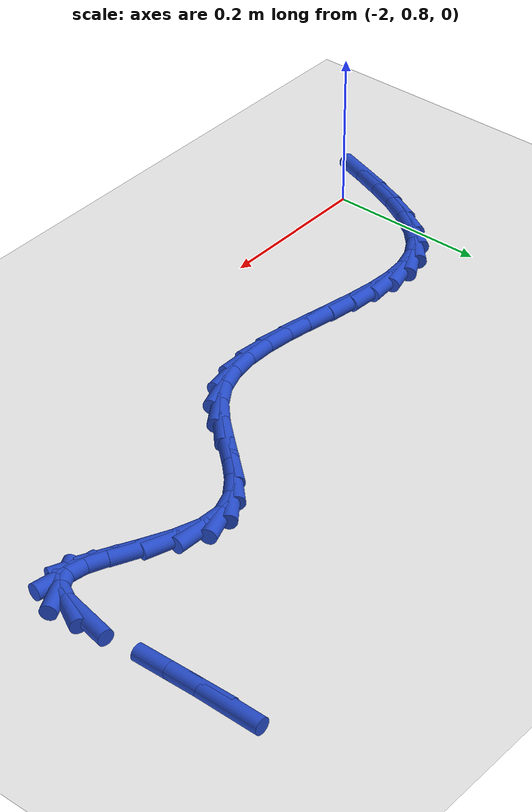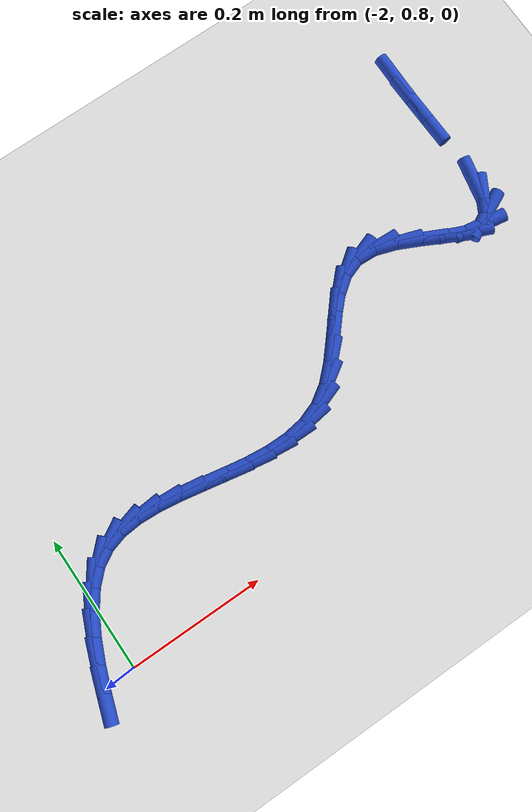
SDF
<sdf version="1.6">
 <world name="default">
  <model name="ground_plane">
   <static>1</static>
   <link name="link">
    <collision name="collision">
     <geometry><plane><normal>0 0 1</normal><size>100 100</size></plane></geometry>
     <surface><friction><ode><mu>100</mu><mu2>50</mu2></ode></friction></surface>
    </collision>
    <visual name="visual">
     <cast_shadows>0</cast_shadows>
     <geometry><plane><normal>0 0 1</normal><size>100 100</size></plane></geometry>
     <material>
      <script><uri>file://media/materials/scripts/gazebo.material</uri><name>Gazebo/WhiteGlow</name></script>
     </material>
    </visual>
   </link>
  </model>
  <model name="line">
   <link name="link_66">
    <pose>-1.2228747087867788 1.2822860384147692 0.01 0 1.57 1.561290577081569</pose>
    <collision name="collision">
     <geometry><cylinder><radius>0.01</radius><length>0.08</length></cylinder></geometry>
    </collision>
    <visual name="visual">
     <material>
      <script><name>Gazebo/Blue</name><uri>file://media/materials/scripts/gazebo.material</uri></script>
     </material>
     <geometry><cylinder><radius>0.01</radius><length>0.08</length></cylinder></geometry>
    </visual>
   </link>
   <link name="link_67">
    <pose>-1.223245988929425 1.2432287340561563 0.01 0 1.57 -1.548777432876308</pose>
    <collision name="collision">
     <geometry><cylinder><radius>0.01</radius><length>0.08</length></cylinder></geometry>
    </collision>
    <visual name="visual">
     <material>
      <script><name>Gazebo/Blue</name><uri>file://media/materials/scripts/gazebo.material</uri></script>
     </material>
     <geometry><cylinder><radius>0.01</radius><length>0.08</length></cylinder></geometry>
    </visual>
   </link>
   <link name="link_68">
    <pose>-1.2223333319821366 1.201786622981392 0.01 0 1.57 -1.546796603275145</pose>
    <collision name="collision">
     <geometry><cylinder><radius>0.01</radius><length>0.08</length></cylinder></geometry>
    </collision>
    <visual name="visual">
     <material>
      <script><name>Gazebo/Blue</name><uri>file://media/materials/scripts/gazebo.material</uri></script>
     </material>
     <geometry><cylinder><radius>0.01</radius><length>0.08</length></cylinder></geometry>
    </visual>
   </link>
   <link name="link_71">
    <pose>-1.2238810327551783 1.0858020614305184 0.01 0 1.57 1.364093655709291</pose>
    <collision name="collision">
     <geometry><cylinder><radius>0.01</radius><length>0.08</length></cylinder></geometry>
    </collision>
    <visual name="visual">
     <material>
      <script><name>Gazebo/Blue</name><uri>file://media/materials/scripts/gazebo.material</uri></script>
     </material>
     <geometry><cylinder><radius>0.01</radius><length>0.08</length></cylinder></geometry>
    </visual>
   </link>
   <link name="link_72">
    <pose>-1.2298219216026625 1.0574713354614709 0.01 0 1.57 1.0684690195581639</pose>
    <collision name="collision">
     <geometry><cylinder><radius>0.01</radius><length>0.08</length></cylinder></geometry>
    </collision>
    <visual name="visual">
     <material>
      <script><name>Gazebo/Blue</name><uri>file://media/materials/scripts/gazebo.material</uri></script>
     </material>
     <geometry><cylinder><radius>0.01</radius><length>0.08</length></cylinder></geometry>
    </visual>
   </link>
   <link name="link_73">
    <pose>-1.2404735204374666 1.0380811087614317 0.01 0 1.57 0.45909057942380627</pose>
    <collision name="collision">
     <geometry><cylinder><radius>0.01</radius><length>0.08</length></cylinder></geometry>
    </collision>
    <visual name="visual">
     <material>
      <script><name>Gazebo/Blue</name><uri>file://media/materials/scripts/gazebo.material</uri></script>
     </material>
     <geometry><cylinder><radius>0.01</radius><length>0.08</length></cylinder></geometry>
    </visual>
   </link>
   <link name="link_74">
    <pose>-1.257034079914465 1.0298949489200555 0.01 0 1.57 -0.16240714039818074</pose>
    <collision name="collision">
     <geometry><cylinder><radius>0.01</radius><length>0.08</length></cylinder></geometry>
    </collision>
    <visual name="visual">
     <material>
      <script><name>Gazebo/Blue</name><uri>file://media/materials/scripts/gazebo.material</uri></script>
     </material>
     <geometry><cylinder><radius>0.01</radius><length>0.08</length></cylinder></geometry>
    </visual>
   </link>
   <link name="link_75">
    <pose>-1.2800127240141546 1.033660005630754 0.01 0 1.57 -0.408703517402526</pose>
    <collision name="collision">
     <geometry><cylinder><radius>0.01</radius><length>0.08</length></cylinder></geometry>
    </collision>
    <visual name="visual">
     <material>
      <script><name>Gazebo/Blue</name><uri>file://media/materials/scripts/gazebo.material</uri></script>
     </material>
     <geometry><cylinder><radius>0.01</radius><length>0.08</length></cylinder></geometry>
    </visual>
   </link>
   <link name="link_76">
    <pose>-1.3079317747277828 1.0457514862361301 0.01 0 1.57 -0.47638041289368177</pose>
    <collision name="collision">
     <geometry><cylinder><radius>0.01</radius><length>0.08</length></cylinder></geometry>
    </collision>
    <visual name="visual">
     <material>
      <script><name>Gazebo/Blue</name><uri>file://media/materials/scripts/gazebo.material</uri></script>
     </material>
     <geometry><cylinder><radius>0.01</radius><length>0.08</length></cylinder></geometry>
    </visual>
   </link>
   <link name="link_77">
    <pose>-1.3389576433630275 1.0617614193830587 0.01 0 1.57 -0.44794381986096843</pose>
    <collision name="collision">
     <geometry><cylinder><radius>0.01</radius><length>0.08</length></cylinder></geometry>
    </collision>
    <visual name="visual">
     <material>
      <script><name>Gazebo/Blue</name><uri>file://media/materials/scripts/gazebo.material</uri></script>
     </material>
     <geometry><cylinder><radius>0.01</radius><length>0.08</length></cylinder></geometry>
    </visual>
   </link>
   <link name="link_78">
    <pose>-1.3712567412275654 1.0772818337184131 0.01 0 1.57 -0.3229791551373206</pose>
    <collision name="collision">
     <geometry><cylinder><radius>0.01</radius><length>0.08</length></cylinder></geometry>
    </collision>
    <visual name="visual">
     <material>
      <script><name>Gazebo/Blue</name><uri>file://media/materials/scripts/gazebo.material</uri></script>
     </material>
     <geometry><cylinder><radius>0.01</radius><length>0.08</length></cylinder></geometry>
    </visual>
   </link>
   <link name="link_79">
    <pose>-1.402995479629073 1.0879047578890677 0.01 0 1.57 -0.04675832456952598</pose>
    <collision name="collision">
     <geometry><cylinder><radius>0.01</radius><length>0.08</length></cylinder></geometry>
    </collision>
    <visual name="visual">
     <material>
      <script><name>Gazebo/Blue</name><uri>file://media/materials/scripts/gazebo.material</uri></script>
     </material>
     <geometry><cylinder><radius>0.01</radius><length>0.08</length></cylinder></geometry>
    </visual>
   </link>
   <link name="link_80">
    <pose>-1.4323617937930946 1.089278879116643 0.01 0 1.57 0.3445039280822161</pose>
    <collision name="collision">
     <geometry><cylinder><radius>0.01</radius><length>0.08</length></cylinder></geometry>
    </collision>
    <visual name="visual">
     <material>
      <script><name>Gazebo/Blue</name><uri>file://media/materials/scripts/gazebo.material</uri></script>
     </material>
     <geometry><cylinder><radius>0.01</radius><length>0.08</length></cylinder></geometry>
    </visual>
   </link>
   <link name="link_81">
    <pose>-1.4586102398171208 1.0798606085125695 0.01 0 1.57 0.6373655005078352</pose>
    <collision name="collision">
     <geometry><cylinder><radius>0.01</radius><length>0.08</length></cylinder></geometry>
    </collision>
    <visual name="visual">
     <material>
      <script><name>Gazebo/Blue</name><uri>file://media/materials/scripts/gazebo.material</uri></script>
     </material>
     <geometry><cylinder><radius>0.01</radius><length>0.08</length></cylinder></geometry>
    </visual>
   </link>
   <link name="link_82">
    <pose>-1.4825308954020096 1.0621483938692484 0.01 0 1.57 0.8005340210043411</pose>
    <collision name="collision">
     <geometry><cylinder><radius>0.01</radius><length>0.08</length></cylinder></geometry>
    </collision>
    <visual name="visual">
     <material>
      <script><name>Gazebo/Blue</name><uri>file://media/materials/scripts/gazebo.material</uri></script>
     </material>
     <geometry><cylinder><radius>0.01</radius><length>0.08</length></cylinder></geometry>
    </visual>
   </link>
   <link name="link_83">
    <pose>-1.5050330629984732 1.0389545247453804 0.01 0 1.57 0.866095043393773</pose>
    <collision name="collision">
     <geometry><cylinder><radius>0.01</radius><length>0.08</length></cylinder></geometry>
    </collision>
    <visual name="visual">
     <material>
      <script><name>Gazebo/Blue</name><uri>file://media/materials/scripts/gazebo.material</uri></script>
     </material>
     <geometry><cylinder><radius>0.01</radius><length>0.08</length></cylinder></geometry>
    </visual>
   </link>
   <link name="link_84">
    <pose>-1.5270260450572242 1.0130912906996676 0.01 0 1.57 0.8544417400924657</pose>
    <collision name="collision">
     <geometry><cylinder><radius>0.01</radius><length>0.08</length></cylinder></geometry>
    </collision>
    <visual name="visual">
     <material>
      <script><name>Gazebo/Blue</name><uri>file://media/materials/scripts/gazebo.material</uri></script>
     </material>
     <geometry><cylinder><radius>0.01</radius><length>0.08</length></cylinder></geometry>
    </visual>
   </link>
   <link name="link_85">
    <pose>-1.5494191440289757 0.987370981290812 0.01 0 1.57 0.7652272118134313</pose>
    <collision name="collision">
     <geometry><cylinder><radius>0.01</radius><length>0.08</length></cylinder></geometry>
    </collision>
    <visual name="visual">
     <material>
      <script><name>Gazebo/Blue</name><uri>file://media/materials/scripts/gazebo.material</uri></script>
     </material>
     <geometry><cylinder><radius>0.01</radius><length>0.08</length></cylinder></geometry>
    </visual>
   </link>
   <link name="link_86">
    <pose>-1.5731216623644404 0.964605886077514 0.01 0 1.57 0.5816234673836334</pose>
    <collision name="collision">
     <geometry><cylinder><radius>0.01</radius><length>0.08</length></cylinder></geometry>
    </collision>
    <visual name="visual">
     <material>
      <script><name>Gazebo/Blue</name><uri>file://media/materials/scripts/gazebo.material</uri></script>
     </material>
     <geometry><cylinder><radius>0.01</radius><length>0.08</length></cylinder></geometry>
    </visual>
   </link>
   <link name="link_87">
    <pose>-1.5990299824087575 0.9475713922110943 0.01 0 1.57 0.3428331946001086</pose>
    <collision name="collision">
     <geometry><cylinder><radius>0.01</radius><length>0.08</length></cylinder></geometry>
    </collision>
    <visual name="visual">
     <material>
      <script><name>Gazebo/Blue</name><uri>file://media/materials/scripts/gazebo.material</uri></script>
     </material>
     <geometry><cylinder><radius>0.01</radius><length>0.08</length></cylinder></geometry>
    </visual>
   </link>
   <link name="link_88">
    <pose>-1.6274721462605706 0.9374195933498345 0.01 0 1.57 0.1412925538189366</pose>
    <collision name="collision">
     <geometry><cylinder><radius>0.01</radius><length>0.08</length></cylinder></geometry>
    </collision>
    <visual name="visual">
     <material>
      <script><name>Gazebo/Blue</name><uri>file://media/materials/scripts/gazebo.material</uri></script>
     </material>
     <geometry><cylinder><radius>0.01</radius><length>0.08</length></cylinder></geometry>
    </visual>
   </link>
   <link name="link_89">
    <pose>-1.6579972280644315 0.9330776947705102 0.01 0 1.57 -0.007296426452191781</pose>
    <collision name="collision">
     <geometry><cylinder><radius>0.01</radius><length>0.08</length></cylinder></geometry>
    </collision>
    <visual name="visual">
     <material>
      <script><name>Gazebo/Blue</name><uri>file://media/materials/scripts/gazebo.material</uri></script>
     </material>
     <geometry><cylinder><radius>0.01</radius><length>0.08</length></cylinder></geometry>
    </visual>
   </link>
   <link name="link_90">
    <pose>-1.6900979395482538 0.9333119194074675 0.01 0 1.57 -0.1074135313287241</pose>
    <collision name="collision">
     <geometry><cylinder><radius>0.01</radius><length>0.08</length></cylinder></geometry>
    </collision>
    <visual name="visual">
     <material>
      <script><name>Gazebo/Blue</name><uri>file://media/materials/scripts/gazebo.material</uri></script>
     </material>
     <geometry><cylinder><radius>0.01</radius><length>0.08</length></cylinder></geometry>
    </visual>
   </link>
   <link name="link_91">
    <pose>-1.723266992439951 0.9368884901950526 0.01 0 1.57 -0.16697854482565277</pose>
    <collision name="collision">
     <geometry><cylinder><radius>0.01</radius><length>0.08</length></cylinder></geometry>
    </collision>
    <visual name="visual">
     <material>
      <script><name>Gazebo/Blue</name><uri>file://media/materials/scripts/gazebo.material</uri></script>
     </material>
     <geometry><cylinder><radius>0.01</radius><length>0.08</length></cylinder></geometry>
    </visual>
   </link>
   <link name="link_92">
    <pose>-1.7569970984674381 0.9425736300676124 0.01 0 1.57 -0.19178691433867923</pose>
    <collision name="collision">
     <geometry><cylinder><radius>0.01</radius><length>0.08</length></cylinder></geometry>
    </collision>
    <visual name="visual">
     <material>
      <script><name>Gazebo/Blue</name><uri>file://media/materials/scripts/gazebo.material</uri></script>
     </material>
     <geometry><cylinder><radius>0.01</radius><length>0.08</length></cylinder></geometry>
    </visual>
   </link>
   <link name="link_93">
    <pose>-1.7907809693586294 0.9491335619594933 0.01 0 1.57 -0.1839420635735535</pose>
    <collision name="collision">
     <geometry><cylinder><radius>0.01</radius><length>0.08</length></cylinder></geometry>
    </collision>
    <visual name="visual">
     <material>
      <script><name>Gazebo/Blue</name><uri>file://media/materials/scripts/gazebo.material</uri></script>
     </material>
     <geometry><cylinder><radius>0.01</radius><length>0.08</length></cylinder></geometry>
    </visual>
   </link>
   <link name="link_94">
    <pose>-1.8241113168414387 0.9553345088050417 0.01 0 1.57 -0.14141156534196972</pose>
    <collision name="collision">
     <geometry><cylinder><radius>0.01</radius><length>0.08</length></cylinder></geometry>
    </collision>
    <visual name="visual">
     <material>
      <script><name>Gazebo/Blue</name><uri>file://media/materials/scripts/gazebo.material</uri></script>
     </material>
     <geometry><cylinder><radius>0.01</radius><length>0.08</length></cylinder></geometry>
    </visual>
   </link>
   <link name="link_95">
    <pose>-1.8564808526437808 0.9599426935386042 0.01 0 1.57 -0.0575919940776218</pose>
    <collision name="collision">
     <geometry><cylinder><radius>0.01</radius><length>0.08</length></cylinder></geometry>
    </collision>
    <visual name="visual">
     <material>
      <script><name>Gazebo/Blue</name><uri>file://media/materials/scripts/gazebo.material</uri></script>
     </material>
     <geometry><cylinder><radius>0.01</radius><length>0.08</length></cylinder></geometry>
    </visual>
   </link>
   <link name="link_96">
    <pose>-1.8873822884935691 0.9617243390945267 0.01 0 1.57 0.0786133892449537</pose>
    <collision name="collision">
     <geometry><cylinder><radius>0.01</radius><length>0.08</length></cylinder></geometry>
    </collision>
    <visual name="visual">
     <material>
      <script><name>Gazebo/Blue</name><uri>file://media/materials/scripts/gazebo.material</uri></script>
     </material>
     <geometry><cylinder><radius>0.01</radius><length>0.08</length></cylinder></geometry>
    </visual>
   </link>
   <link name="link_97">
    <pose>-1.9163083361187185 0.9594456684071564 0.01 0 1.57 0.2789119248589607</pose>
    <collision name="collision">
     <geometry><cylinder><radius>0.01</radius><length>0.08</length></cylinder></geometry>
    </collision>
    <visual name="visual">
     <material>
      <script><name>Gazebo/Blue</name><uri>file://media/materials/scripts/gazebo.material</uri></script>
     </material>
     <geometry><cylinder><radius>0.01</radius><length>0.08</length></cylinder></geometry>
    </visual>
   </link>
   <link name="link_98">
    <pose>-1.9427517072471434 0.9518729044108397 0.01 0 1.57 0.5373531390044232</pose>
    <collision name="collision">
     <geometry><cylinder><radius>0.01</radius><length>0.08</length></cylinder></geometry>
    </collision>
    <visual name="visual">
     <material>
      <script><name>Gazebo/Blue</name><uri>file://media/materials/scripts/gazebo.material</uri></script>
     </material>
     <geometry><cylinder><radius>0.01</radius><length>0.08</length></cylinder></geometry>
    </visual>
   </link>
   <link name="link_99">
    <pose>-1.9662473087307182 0.9378733464509055 0.01 0 1.57 0.7779060273444917</pose>
    <collision name="collision">
     <geometry><cylinder><radius>0.01</radius><length>0.08</length></cylinder></geometry>
    </collision>
    <visual name="visual">
     <material>
      <script><name>Gazebo/Blue</name><uri>file://media/materials/scripts/gazebo.material</uri></script>
     </material>
     <geometry><cylinder><radius>0.01</radius><length>0.08</length></cylinder></geometry>
    </visual>
   </link>
   <link name="link_100">
    <pose>-1.9868551073892797 0.9175720500333507 0.01 0 1.57 0.9549015927686312</pose>
    <collision name="collision">
     <geometry><cylinder><radius>0.01</radius><length>0.08</length></cylinder></geometry>
    </collision>
    <visual name="visual">
     <material>
      <script><name>Gazebo/Blue</name><uri>file://media/materials/scripts/gazebo.material</uri></script>
     </material>
     <geometry><cylinder><radius>0.01</radius><length>0.08</length></cylinder></geometry>
    </visual>
   </link>
   <link name="link_101">
    <pose>-2.0049909758756352 0.8919466261461241 0.01 0 1.57 1.077980445230382</pose>
    <collision name="collision">
     <geometry><cylinder><radius>0.01</radius><length>0.08</length></cylinder></geometry>
    </collision>
    <visual name="visual">
     <material>
      <script><name>Gazebo/Blue</name><uri>file://media/materials/scripts/gazebo.material</uri></script>
     </material>
     <geometry><cylinder><radius>0.01</radius><length>0.08</length></cylinder></geometry>
    </visual>
   </link>
   <link name="link_102">
    <pose>-2.0210775393697764 0.8619908611346211 0.01 0 1.57 1.1610489321738466</pose>
    <collision name="collision">
     <geometry><cylinder><radius>0.01</radius><length>0.08</length></cylinder></geometry>
    </collision>
    <visual name="visual">
     <material>
      <script><name>Gazebo/Blue</name><uri>file://media/materials/scripts/gazebo.material</uri></script>
     </material>
     <geometry><cylinder><radius>0.01</radius><length>0.08</length></cylinder></geometry>
    </visual>
   </link>
   <link name="link_103">
    <pose>-2.0355374230516916 0.8286985413442381 0.01 0 1.57 1.2146688304536806</pose>
    <collision name="collision">
     <geometry><cylinder><radius>0.01</radius><length>0.08</length></cylinder></geometry>
    </collision>
    <visual name="visual">
     <material>
      <script><name>Gazebo/Blue</name><uri>file://media/materials/scripts/gazebo.material</uri></script>
     </material>
     <geometry><cylinder><radius>0.01</radius><length>0.08</length></cylinder></geometry>
    </visual>
   </link>
   <link name="link_104">
    <pose>-2.0487932521013725 0.7930634531203716 0.01 0 1.57 1.2454879769954914</pose>
    <collision name="collision">
     <geometry><cylinder><radius>0.01</radius><length>0.08</length></cylinder></geometry>
    </collision>
    <visual name="visual">
     <material>
      <script><name>Gazebo/Blue</name><uri>file://media/materials/scripts/gazebo.material</uri></script>
     </material>
     <geometry><cylinder><radius>0.01</radius><length>0.08</length></cylinder></geometry>
    </visual>
   </link>
  </model>
 </world>
</sdf>
